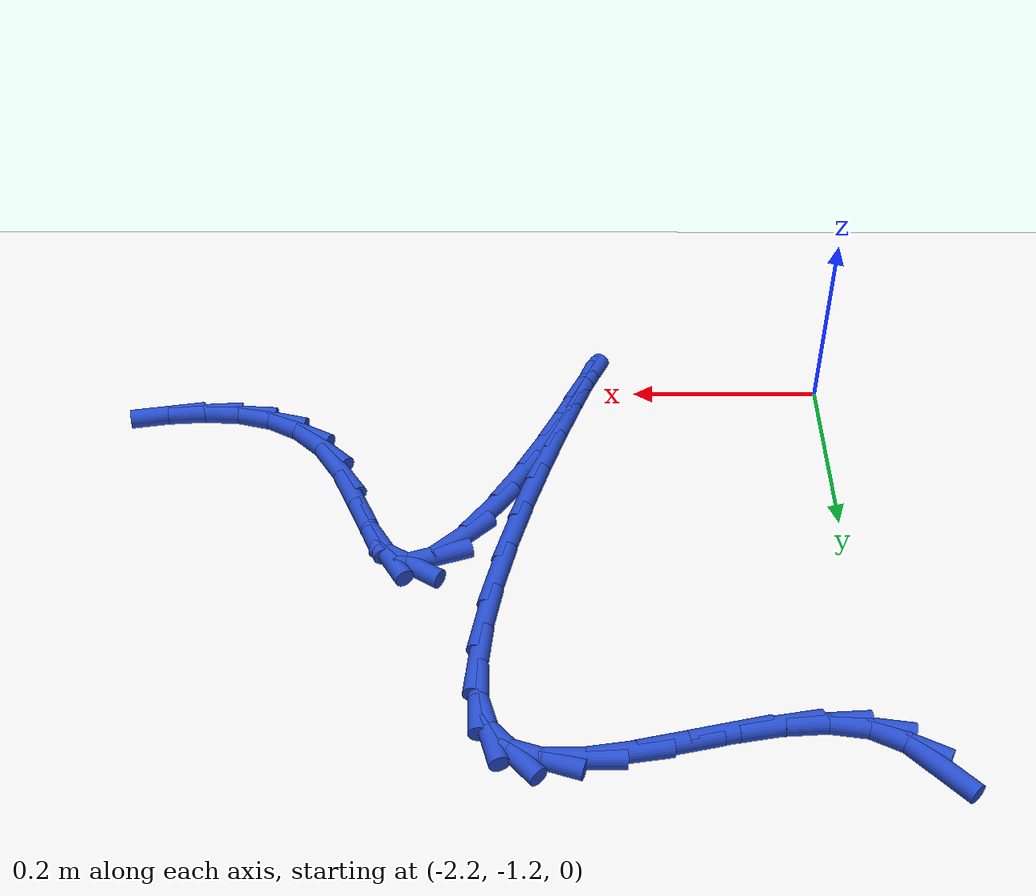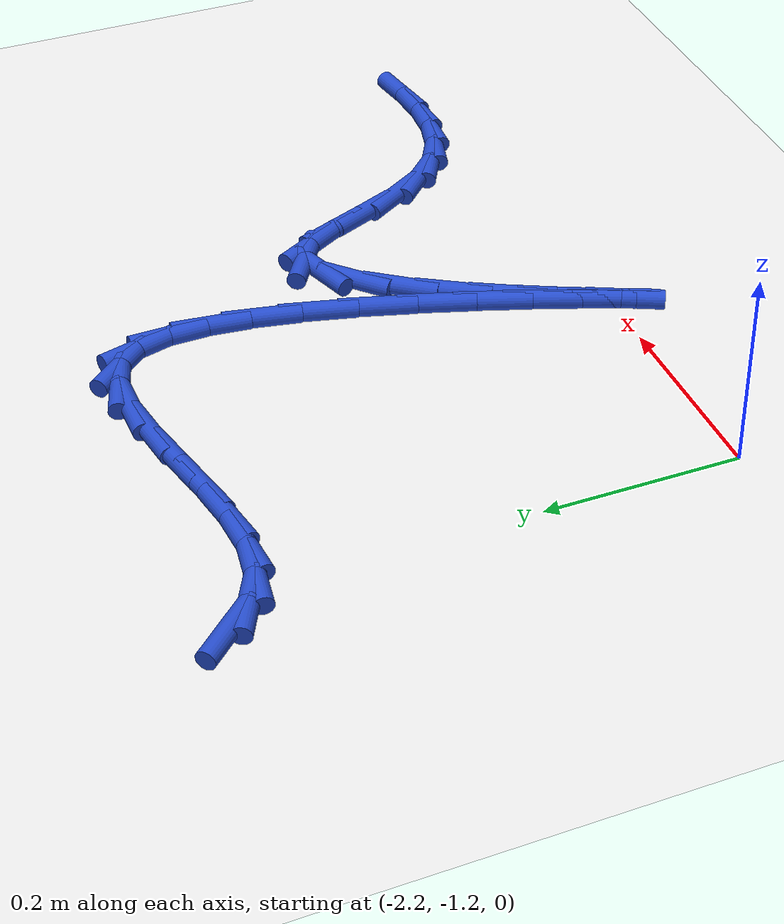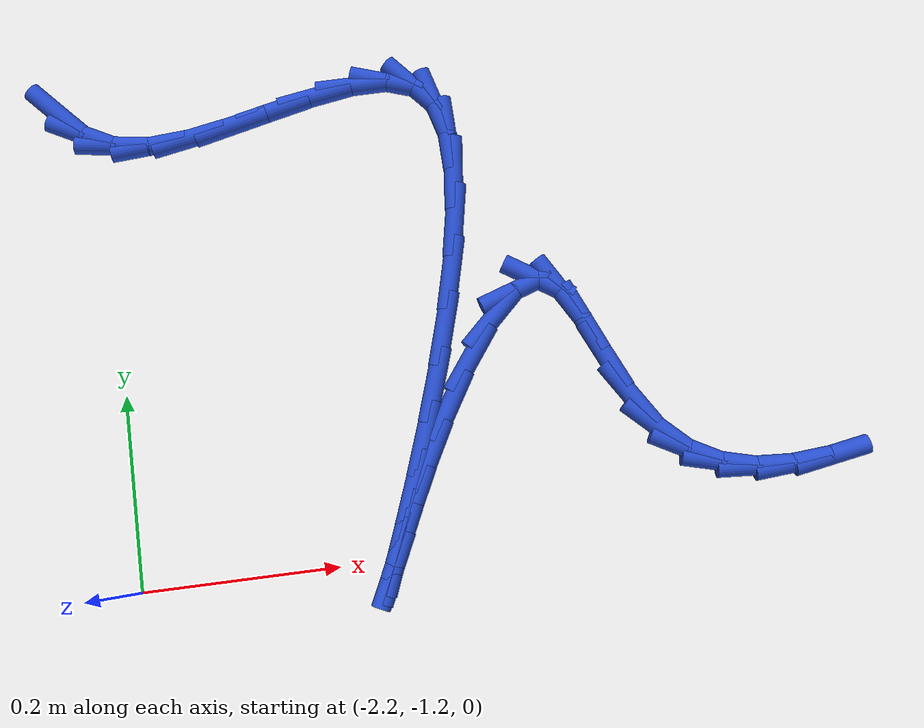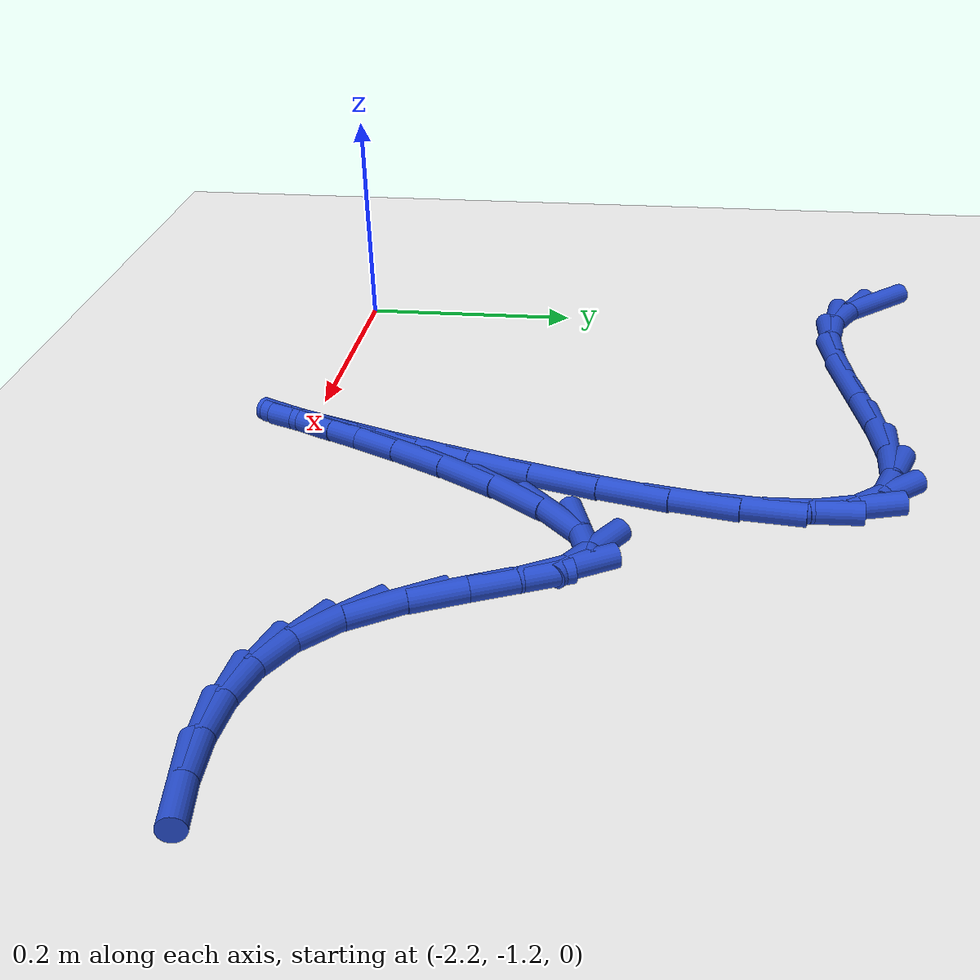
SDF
<sdf version="1.6">
 <world name="default">
  <model name="ground_plane">
   <static>1</static>
   <link name="link">
    <collision name="collision">
     <geometry><plane><normal>0 0 1</normal><size>100 100</size></plane></geometry>
     <surface><friction><ode><mu>100</mu><mu2>50</mu2></ode></friction></surface>
    </collision>
    <visual name="visual">
     <cast_shadows>0</cast_shadows>
     <geometry><plane><normal>0 0 1</normal><size>100 100</size></plane></geometry>
     <material>
      <script><uri>file://media/materials/scripts/gazebo.material</uri><name>Gazebo/WhiteGlow</name></script>
     </material>
    </visual>
   </link>
  </model>
  <model name="line">
   <link name="link_148">
    <pose>-2.244951446671684 -0.688427355341411 0.01 0 1.57 -0.824235744779545</pose>
    <collision name="collision">
     <geometry><cylinder><radius>0.01</radius><length>0.08</length></cylinder></geometry>
    </collision>
    <visual name="visual">
     <material>
      <script><name>Gazebo/Blue</name><uri>file://media/materials/scripts/gazebo.material</uri></script>
     </material>
     <geometry><cylinder><radius>0.01</radius><length>0.08</length></cylinder></geometry>
    </visual>
   </link>
   <link name="link_149">
    <pose>-2.2206793116696226 -0.7146620399000119 0.01 0 1.57 -0.4855842125415337</pose>
    <collision name="collision">
     <geometry><cylinder><radius>0.01</radius><length>0.08</length></cylinder></geometry>
    </collision>
    <visual name="visual">
     <material>
      <script><name>Gazebo/Blue</name><uri>file://media/materials/scripts/gazebo.material</uri></script>
     </material>
     <geometry><cylinder><radius>0.01</radius><length>0.08</length></cylinder></geometry>
    </visual>
   </link>
   <link name="link_150">
    <pose>-2.1896473834176575 -0.731038499111747 0.01 0 1.57 -0.1465325944614176</pose>
    <collision name="collision">
     <geometry><cylinder><radius>0.01</radius><length>0.08</length></cylinder></geometry>
    </collision>
    <visual name="visual">
     <material>
      <script><name>Gazebo/Blue</name><uri>file://media/materials/scripts/gazebo.material</uri></script>
     </material>
     <geometry><cylinder><radius>0.01</radius><length>0.08</length></cylinder></geometry>
    </visual>
   </link>
   <link name="link_151">
    <pose>-2.1517956921798587 -0.7366250474048901 0.01 0 1.57 0.06777585370972455</pose>
    <collision name="collision">
     <geometry><cylinder><radius>0.01</radius><length>0.08</length></cylinder></geometry>
    </collision>
    <visual name="visual">
     <material>
      <script><name>Gazebo/Blue</name><uri>file://media/materials/scripts/gazebo.material</uri></script>
     </material>
     <geometry><cylinder><radius>0.01</radius><length>0.08</length></cylinder></geometry>
    </visual>
   </link>
   <link name="link_152">
    <pose>-2.108845371097708 -0.7337095872388595 0.01 0 1.57 0.18073870866416786</pose>
    <collision name="collision">
     <geometry><cylinder><radius>0.01</radius><length>0.08</length></cylinder></geometry>
    </collision>
    <visual name="visual">
     <material>
      <script><name>Gazebo/Blue</name><uri>file://media/materials/scripts/gazebo.material</uri></script>
     </material>
     <geometry><cylinder><radius>0.01</radius><length>0.08</length></cylinder></geometry>
    </visual>
   </link>
   <link name="link_153">
    <pose>-2.062926164550608 -0.7253186419959147 0.01 0 1.57 0.22780410874786647</pose>
    <collision name="collision">
     <geometry><cylinder><radius>0.01</radius><length>0.08</length></cylinder></geometry>
    </collision>
    <visual name="visual">
     <material>
      <script><name>Gazebo/Blue</name><uri>file://media/materials/scripts/gazebo.material</uri></script>
     </material>
     <geometry><cylinder><radius>0.01</radius><length>0.08</length></cylinder></geometry>
    </visual>
   </link>
   <link name="link_154">
    <pose>-2.0161678169179553 -0.7144787350583152 0.01 0 1.57 0.22198637491199305</pose>
    <collision name="collision">
     <geometry><cylinder><radius>0.01</radius><length>0.08</length></cylinder></geometry>
    </collision>
    <visual name="visual">
     <material>
      <script><name>Gazebo/Blue</name><uri>file://media/materials/scripts/gazebo.material</uri></script>
     </material>
     <geometry><cylinder><radius>0.01</radius><length>0.08</length></cylinder></geometry>
    </visual>
   </link>
   <link name="link_155">
    <pose>-1.9707000725791513 -0.7042163898083201 0.01 0 1.57 0.15704730914249804</pose>
    <collision name="collision">
     <geometry><cylinder><radius>0.01</radius><length>0.08</length></cylinder></geometry>
    </collision>
    <visual name="visual">
     <material>
      <script><name>Gazebo/Blue</name><uri>file://media/materials/scripts/gazebo.material</uri></script>
     </material>
     <geometry><cylinder><radius>0.01</radius><length>0.08</length></cylinder></geometry>
    </visual>
   </link>
   <link name="link_156">
    <pose>-1.9286526759135951 -0.697558129628189 0.01 0 1.57 0.0007576373929589383</pose>
    <collision name="collision">
     <geometry><cylinder><radius>0.01</radius><length>0.08</length></cylinder></geometry>
    </collision>
    <visual name="visual">
     <material>
      <script><name>Gazebo/Blue</name><uri>file://media/materials/scripts/gazebo.material</uri></script>
     </material>
     <geometry><cylinder><radius>0.01</radius><length>0.08</length></cylinder></geometry>
    </visual>
   </link>
   <link name="link_157">
    <pose>-1.8921553713006867 -0.6975304779001812 0.01 0 1.57 -0.3224892173154013</pose>
    <collision name="collision">
     <geometry><cylinder><radius>0.01</radius><length>0.08</length></cylinder></geometry>
    </collision>
    <visual name="visual">
     <material>
      <script><name>Gazebo/Blue</name><uri>file://media/materials/scripts/gazebo.material</uri></script>
     </material>
     <geometry><cylinder><radius>0.01</radius><length>0.08</length></cylinder></geometry>
    </visual>
   </link>
   <link name="link_158">
    <pose>-1.8633379031198254 -0.7071599580065558 0.01 0 1.57 -0.858570656186098</pose>
    <collision name="collision">
     <geometry><cylinder><radius>0.01</radius><length>0.08</length></cylinder></geometry>
    </collision>
    <visual name="visual">
     <material>
      <script><name>Gazebo/Blue</name><uri>file://media/materials/scripts/gazebo.material</uri></script>
     </material>
     <geometry><cylinder><radius>0.01</radius><length>0.08</length></cylinder></geometry>
    </visual>
   </link>
   <link name="link_159">
    <pose>-1.8442201074504776 -0.7293022575713843 0.01 0 1.57 -1.3079760055262002</pose>
    <collision name="collision">
     <geometry><cylinder><radius>0.01</radius><length>0.08</length></cylinder></geometry>
    </collision>
    <visual name="visual">
     <material>
      <script><name>Gazebo/Blue</name><uri>file://media/materials/scripts/gazebo.material</uri></script>
     </material>
     <geometry><cylinder><radius>0.01</radius><length>0.08</length></cylinder></geometry>
    </visual>
   </link>
   <link name="link_160">
    <pose>-1.8349223819095968 -0.7638606756359653 0.01 0 1.57 -1.5491281400132786</pose>
    <collision name="collision">
     <geometry><cylinder><radius>0.01</radius><length>0.08</length></cylinder></geometry>
    </collision>
    <visual name="visual">
     <material>
      <script><name>Gazebo/Blue</name><uri>file://media/materials/scripts/gazebo.material</uri></script>
     </material>
     <geometry><cylinder><radius>0.01</radius><length>0.08</length></cylinder></geometry>
    </visual>
   </link>
   <link name="link_161">
    <pose>-1.8339605166974533 -0.8082443927374471 0.01 0 1.57 1.4579792231930209</pose>
    <collision name="collision">
     <geometry><cylinder><radius>0.01</radius><length>0.08</length></cylinder></geometry>
    </collision>
    <visual name="visual">
     <material>
      <script><name>Gazebo/Blue</name><uri>file://media/materials/scripts/gazebo.material</uri></script>
     </material>
     <geometry><cylinder><radius>0.01</radius><length>0.08</length></cylinder></geometry>
    </visual>
   </link>
   <link name="link_162">
    <pose>-1.839799886358077 -0.8597842259330281 0.01 0 1.57 1.375106819686602</pose>
    <collision name="collision">
     <geometry><cylinder><radius>0.01</radius><length>0.08</length></cylinder></geometry>
    </collision>
    <visual name="visual">
     <material>
      <script><name>Gazebo/Blue</name><uri>file://media/materials/scripts/gazebo.material</uri></script>
     </material>
     <geometry><cylinder><radius>0.01</radius><length>0.08</length></cylinder></geometry>
    </visual>
   </link>
   <link name="link_163">
    <pose>-1.8509058654355004 -0.915810992279907 0.01 0 1.57 1.3196957358167856</pose>
    <collision name="collision">
     <geometry><cylinder><radius>0.01</radius><length>0.08</length></cylinder></geometry>
    </collision>
    <visual name="visual">
     <material>
      <script><name>Gazebo/Blue</name><uri>file://media/materials/scripts/gazebo.material</uri></script>
     </material>
     <geometry><cylinder><radius>0.01</radius><length>0.08</length></cylinder></geometry>
    </visual>
   </link>
   <link name="link_164">
    <pose>-1.8657438284737535 -0.9736555088352823 0.01 0 1.57 1.2803475817871315</pose>
    <collision name="collision">
     <geometry><cylinder><radius>0.01</radius><length>0.08</length></cylinder></geometry>
    </collision>
    <visual name="visual">
     <material>
      <script><name>Gazebo/Blue</name><uri>file://media/materials/scripts/gazebo.material</uri></script>
     </material>
     <geometry><cylinder><radius>0.01</radius><length>0.08</length></cylinder></geometry>
    </visual>
   </link>
   <link name="link_165">
    <pose>-1.8827791500168678 -1.0306485926563527 0.01 0 1.57 1.2511696969647441</pose>
    <collision name="collision">
     <geometry><cylinder><radius>0.01</radius><length>0.08</length></cylinder></geometry>
    </collision>
    <visual name="visual">
     <material>
      <script><name>Gazebo/Blue</name><uri>file://media/materials/scripts/gazebo.material</uri></script>
     </material>
     <geometry><cylinder><radius>0.01</radius><length>0.08</length></cylinder></geometry>
    </visual>
   </link>
   <link name="link_166">
    <pose>-1.9004772046088747 -1.0841210608003167 0.01 0 1.57 1.2289077436753353</pose>
    <collision name="collision">
     <geometry><cylinder><radius>0.01</radius><length>0.08</length></cylinder></geometry>
    </collision>
    <visual name="visual">
     <material>
      <script><name>Gazebo/Blue</name><uri>file://media/materials/scripts/gazebo.material</uri></script>
     </material>
     <geometry><cylinder><radius>0.01</radius><length>0.08</length></cylinder></geometry>
    </visual>
   </link>
   <link name="link_167">
    <pose>-1.917303366793804 -1.1314037303243722 0.01 0 1.57 1.211780137992636</pose>
    <collision name="collision">
     <geometry><cylinder><radius>0.01</radius><length>0.08</length></cylinder></geometry>
    </collision>
    <visual name="visual">
     <material>
      <script><name>Gazebo/Blue</name><uri>file://media/materials/scripts/gazebo.material</uri></script>
     </material>
     <geometry><cylinder><radius>0.01</radius><length>0.08</length></cylinder></geometry>
    </visual>
   </link>
   <link name="link_168">
    <pose>-1.9317230111156884 -1.1698274182857187 0.01 0 1.57 1.1992873285477725</pose>
    <collision name="collision">
     <geometry><cylinder><radius>0.01</radius><length>0.08</length></cylinder></geometry>
    </collision>
    <visual name="visual">
     <material>
      <script><name>Gazebo/Blue</name><uri>file://media/materials/scripts/gazebo.material</uri></script>
     </material>
     <geometry><cylinder><radius>0.01</radius><length>0.08</length></cylinder></geometry>
    </visual>
   </link>
   <link name="link_169">
    <pose>-1.9422015121185578 -1.1967229417415544 0.01 0 1.57 1.1954968401718744</pose>
    <collision name="collision">
     <geometry><cylinder><radius>0.01</radius><length>0.08</length></cylinder></geometry>
    </collision>
    <visual name="visual">
     <material>
      <script><name>Gazebo/Blue</name><uri>file://media/materials/scripts/gazebo.material</uri></script>
     </material>
     <geometry><cylinder><radius>0.01</radius><length>0.08</length></cylinder></geometry>
    </visual>
   </link>
   <link name="link_170">
    <pose>-1.9472042443464435 -1.2094211177490775 0.01 0 1.57 1.1219398515458736</pose>
    <collision name="collision">
     <geometry><cylinder><radius>0.01</radius><length>0.08</length></cylinder></geometry>
    </collision>
    <visual name="visual">
     <material>
      <script><name>Gazebo/Blue</name><uri>file://media/materials/scripts/gazebo.material</uri></script>
     </material>
     <geometry><cylinder><radius>0.01</radius><length>0.08</length></cylinder></geometry>
    </visual>
   </link>
   <link name="link_171">
    <pose>-1.9451966122808477 -1.2052528402032903 0.01 0 1.57 1.1488523538042066</pose>
    <collision name="collision">
     <geometry><cylinder><radius>0.01</radius><length>0.08</length></cylinder></geometry>
    </collision>
    <visual name="visual">
     <material>
      <script><name>Gazebo/Blue</name><uri>file://media/materials/scripts/gazebo.material</uri></script>
     </material>
     <geometry><cylinder><radius>0.01</radius><length>0.08</length></cylinder></geometry>
    </visual>
   </link>
   <link name="link_172">
    <pose>-1.935223700906962 -1.1830368166077558 0.01 0 1.57 1.135068050327829</pose>
    <collision name="collision">
     <geometry><cylinder><radius>0.01</radius><length>0.08</length></cylinder></geometry>
    </collision>
    <visual name="visual">
     <material>
      <script><name>Gazebo/Blue</name><uri>file://media/materials/scripts/gazebo.material</uri></script>
     </material>
     <geometry><cylinder><radius>0.01</radius><length>0.08</length></cylinder></geometry>
    </visual>
   </link>
   <link name="link_173">
    <pose>-1.9183956869110108 -1.1468920388747155 0.01 0 1.57 1.1120581776921667</pose>
    <collision name="collision">
     <geometry><cylinder><radius>0.01</radius><length>0.08</length></cylinder></geometry>
    </collision>
    <visual name="visual">
     <material>
      <script><name>Gazebo/Blue</name><uri>file://media/materials/scripts/gazebo.material</uri></script>
     </material>
     <geometry><cylinder><radius>0.01</radius><length>0.08</length></cylinder></geometry>
    </visual>
   </link>
   <link name="link_174">
    <pose>-1.896282413902092 -1.1021172845033014 0.01 0 1.57 1.0780565839235376</pose>
    <collision name="collision">
     <geometry><cylinder><radius>0.01</radius><length>0.08</length></cylinder></geometry>
    </collision>
    <visual name="visual">
     <material>
      <script><name>Gazebo/Blue</name><uri>file://media/materials/scripts/gazebo.material</uri></script>
     </material>
     <geometry><cylinder><radius>0.01</radius><length>0.08</length></cylinder></geometry>
    </visual>
   </link>
   <link name="link_175">
    <pose>-1.8704537254893037 -1.0540113309926467 0.01 0 1.57 1.0257484179049186</pose>
    <collision name="collision">
     <geometry><cylinder><radius>0.01</radius><length>0.08</length></cylinder></geometry>
    </collision>
    <visual name="visual">
     <material>
      <script><name>Gazebo/Blue</name><uri>file://media/materials/scripts/gazebo.material</uri></script>
     </material>
     <geometry><cylinder><radius>0.01</radius><length>0.08</length></cylinder></geometry>
    </visual>
   </link>
   <link name="link_176">
    <pose>-1.8424794652817418 -1.0078729558418837 0.01 0 1.57 0.9373144726615996</pose>
    <collision name="collision">
     <geometry><cylinder><radius>0.01</radius><length>0.08</length></cylinder></geometry>
    </collision>
    <visual name="visual">
     <material>
      <script><name>Gazebo/Blue</name><uri>file://media/materials/scripts/gazebo.material</uri></script>
     </material>
     <geometry><cylinder><radius>0.01</radius><length>0.08</length></cylinder></geometry>
    </visual>
   </link>
   <link name="link_177">
    <pose>-1.8139294768885044 -0.9690009365501426 0.01 0 1.57 0.7622139954409272</pose>
    <collision name="collision">
     <geometry><cylinder><radius>0.01</radius><length>0.08</length></cylinder></geometry>
    </collision>
    <visual name="visual">
     <material>
      <script><name>Gazebo/Blue</name><uri>file://media/materials/scripts/gazebo.material</uri></script>
     </material>
     <geometry><cylinder><radius>0.01</radius><length>0.08</length></cylinder></geometry>
    </visual>
   </link>
   <link name="link_178">
    <pose>-1.7863736039186882 -0.9426940506165574 0.01 0 1.57 0.32579052852556106</pose>
    <collision name="collision">
     <geometry><cylinder><radius>0.01</radius><length>0.08</length></cylinder></geometry>
    </collision>
    <visual name="visual">
     <material>
      <script><name>Gazebo/Blue</name><uri>file://media/materials/scripts/gazebo.material</uri></script>
     </material>
     <geometry><cylinder><radius>0.01</radius><length>0.08</length></cylinder></geometry>
    </visual>
   </link>
   <link name="link_179">
    <pose>-1.76138168998139 -0.9342510755402595 0.01 0 1.57 -0.576864339832017</pose>
    <collision name="collision">
     <geometry><cylinder><radius>0.01</radius><length>0.08</length></cylinder></geometry>
    </collision>
    <visual name="visual">
     <material>
      <script><name>Gazebo/Blue</name><uri>file://media/materials/scripts/gazebo.material</uri></script>
     </material>
     <geometry><cylinder><radius>0.01</radius><length>0.08</length></cylinder></geometry>
    </visual>
   </link>
   <link name="link_180">
    <pose>-1.7402565892399764 -0.9479970939539473 0.01 0 1.57 -1.0509778914919865</pose>
    <collision name="collision">
     <geometry><cylinder><radius>0.01</radius><length>0.08</length></cylinder></geometry>
    </collision>
    <visual name="visual">
     <material>
      <script><name>Gazebo/Blue</name><uri>file://media/materials/scripts/gazebo.material</uri></script>
     </material>
     <geometry><cylinder><radius>0.01</radius><length>0.08</length></cylinder></geometry>
    </visual>
   </link>
   <link name="link_181">
    <pose>-1.7220058046499938 -0.9798861771135047 0.01 0 1.57 -1.1728294114465987</pose>
    <collision name="collision">
     <geometry><cylinder><radius>0.01</radius><length>0.08</length></cylinder></geometry>
    </collision>
    <visual name="visual">
     <material>
      <script><name>Gazebo/Blue</name><uri>file://media/materials/scripts/gazebo.material</uri></script>
     </material>
     <geometry><cylinder><radius>0.01</radius><length>0.08</length></cylinder></geometry>
    </visual>
   </link>
   <link name="link_182">
    <pose>-1.7044669276632387 -1.021605797562422 0.01 0 1.57 -1.156501038333881</pose>
    <collision name="collision">
     <geometry><cylinder><radius>0.01</radius><length>0.08</length></cylinder></geometry>
    </collision>
    <visual name="visual">
     <material>
      <script><name>Gazebo/Blue</name><uri>file://media/materials/scripts/gazebo.material</uri></script>
     </material>
     <geometry><cylinder><radius>0.01</radius><length>0.08</length></cylinder></geometry>
    </visual>
   </link>
   <link name="link_183">
    <pose>-1.6854682320414083 -1.0648094467742915 0.01 0 1.57 -1.0172756614148482</pose>
    <collision name="collision">
     <geometry><cylinder><radius>0.01</radius><length>0.08</length></cylinder></geometry>
    </collision>
    <visual name="visual">
     <material>
      <script><name>Gazebo/Blue</name><uri>file://media/materials/scripts/gazebo.material</uri></script>
     </material>
     <geometry><cylinder><radius>0.01</radius><length>0.08</length></cylinder></geometry>
    </visual>
   </link>
   <link name="link_184">
    <pose>-1.662891391759755 -1.1013439279788466 0.01 0 1.57 -0.7716728258948893</pose>
    <collision name="collision">
     <geometry><cylinder><radius>0.01</radius><length>0.08</length></cylinder></geometry>
    </collision>
    <visual name="visual">
     <material>
      <script><name>Gazebo/Blue</name><uri>file://media/materials/scripts/gazebo.material</uri></script>
     </material>
     <geometry><cylinder><radius>0.01</radius><length>0.08</length></cylinder></geometry>
    </visual>
   </link>
   <link name="link_185">
    <pose>-1.6358799064541145 -1.1276239237857728 0.01 0 1.57 -0.5032073866388469</pose>
    <collision name="collision">
     <geometry><cylinder><radius>0.01</radius><length>0.08</length></cylinder></geometry>
    </collision>
    <visual name="visual">
     <material>
      <script><name>Gazebo/Blue</name><uri>file://media/materials/scripts/gazebo.material</uri></script>
     </material>
     <geometry><cylinder><radius>0.01</radius><length>0.08</length></cylinder></geometry>
    </visual>
   </link>
   <link name="link_186">
    <pose>-1.6048580671577 -1.1447006532113773 0.01 0 1.57 -0.25839084275564256</pose>
    <collision name="collision">
     <geometry><cylinder><radius>0.01</radius><length>0.08</length></cylinder></geometry>
    </collision>
    <visual name="visual">
     <material>
      <script><name>Gazebo/Blue</name><uri>file://media/materials/scripts/gazebo.material</uri></script>
     </material>
     <geometry><cylinder><radius>0.01</radius><length>0.08</length></cylinder></geometry>
    </visual>
   </link>
   <link name="link_187">
    <pose>-1.5703073585292866 -1.153832379391484 0.01 0 1.57 -0.0649380883563592</pose>
    <collision name="collision">
     <geometry><cylinder><radius>0.01</radius><length>0.08</length></cylinder></geometry>
    </collision>
    <visual name="visual">
     <material>
      <script><name>Gazebo/Blue</name><uri>file://media/materials/scripts/gazebo.material</uri></script>
     </material>
     <geometry><cylinder><radius>0.01</radius><length>0.08</length></cylinder></geometry>
    </visual>
   </link>
   <link name="link_188">
    <pose>-1.532709265227652 -1.156277365461918 0.01 0 1.57 0.07414654759515169</pose>
    <collision name="collision">
     <geometry><cylinder><radius>0.01</radius><length>0.08</length></cylinder></geometry>
    </collision>
    <visual name="visual">
     <material>
      <script><name>Gazebo/Blue</name><uri>file://media/materials/scripts/gazebo.material</uri></script>
     </material>
     <geometry><cylinder><radius>0.01</radius><length>0.08</length></cylinder></geometry>
    </visual>
   </link>
   <link name="link_189">
    <pose>-1.4925452719115724 -1.1532938745585044 0.01 0 1.57 0.16773388125772984</pose>
    <collision name="collision">
     <geometry><cylinder><radius>0.01</radius><length>0.08</length></cylinder></geometry>
    </collision>
    <visual name="visual">
     <material>
      <script><name>Gazebo/Blue</name><uri>file://media/materials/scripts/gazebo.material</uri></script>
     </material>
     <geometry><cylinder><radius>0.01</radius><length>0.08</length></cylinder></geometry>
    </visual>
   </link>
  </model>
 </world>
</sdf>
